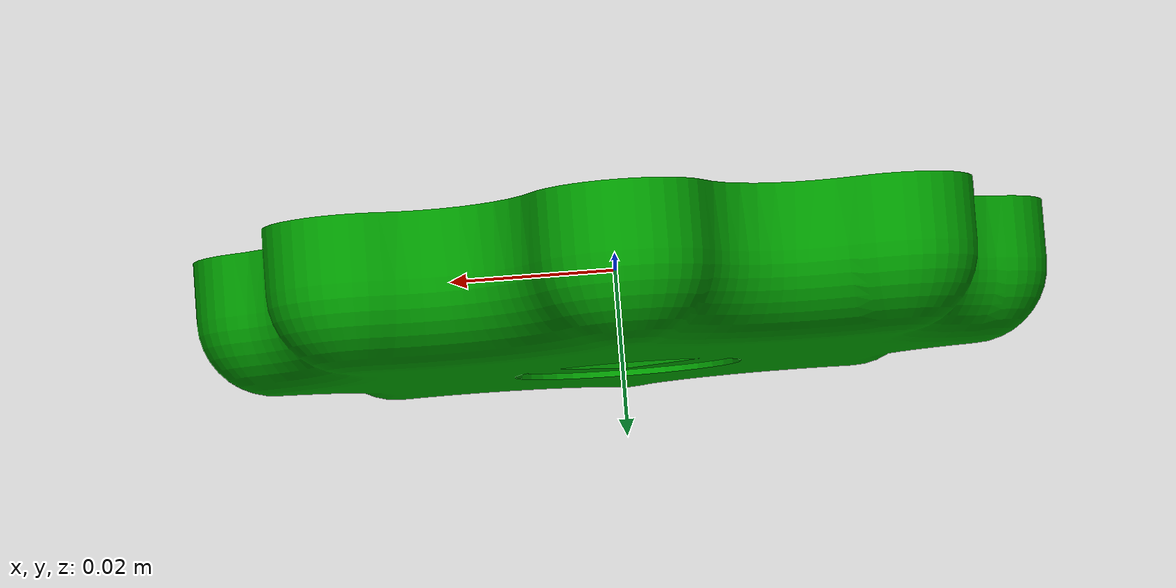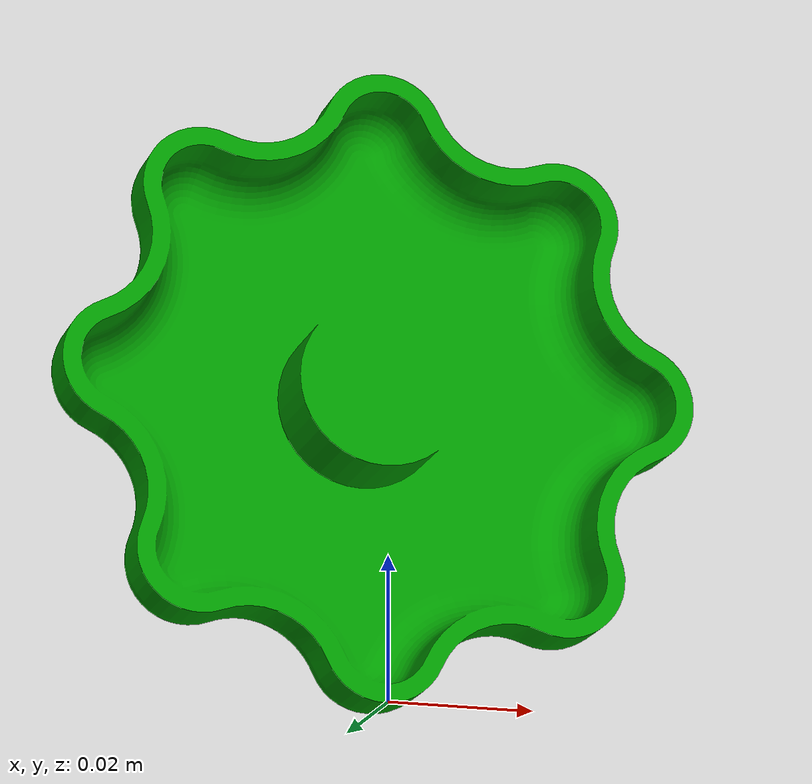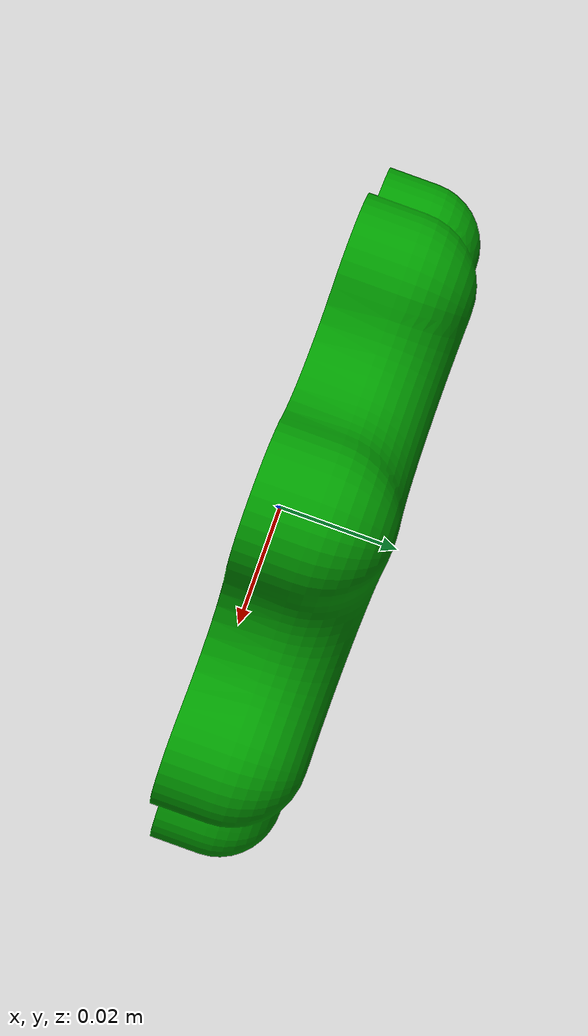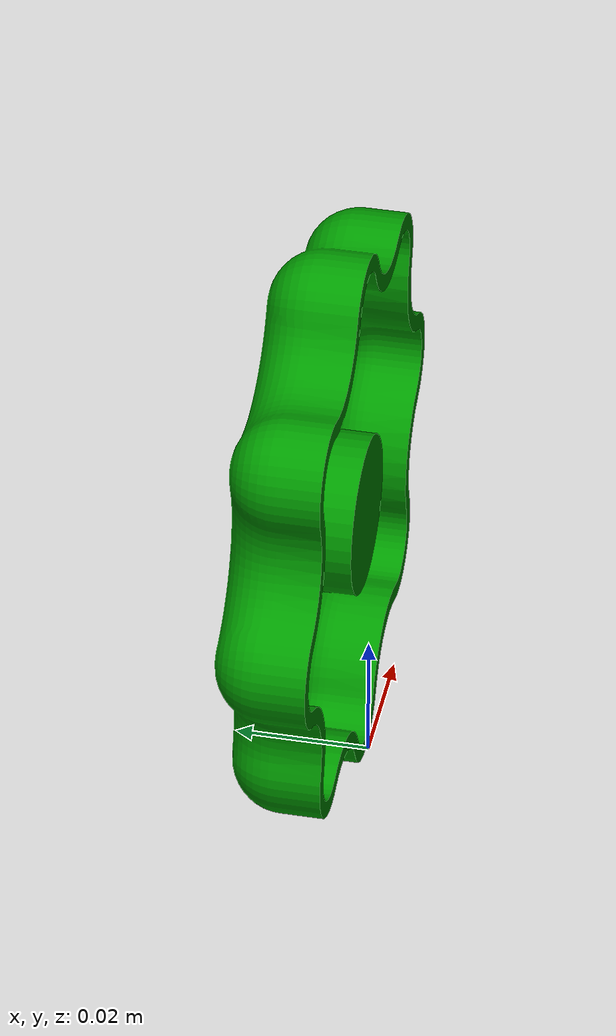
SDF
<?xml version="1.0" ?>
<sdf version="1.5">
  <model name="hand_wheel_valve">
    <link name="handle">
      <pose>0 0 0.04445 0 0 0</pose>
      <inertial>
        <mass>0.0644</mass>
        <inertia>
          <ixx>0.000031</ixx>
          <ixy>0.0000</ixy>
          <ixz>0.0000</ixz>
          <iyy>0.000031</iyy>
          <iyz>0.0000</iyz>
          <izz>0.000059</izz>
        </inertia>
      </inertial>
      <collision name="collision">
        <geometry>
          <mesh>
            <uri>model://drc_practice_hand_wheel_valve/meshes/hand_wheel_valve.dae</uri>
          </mesh>
        </geometry>
        <surface>
          <bounce>
            <restitution_coefficient>0.01</restitution_coefficient>
            <threshold>5.0</threshold>
          </bounce>
          <friction>
            <ode>
              <mu>5</mu>
              <mu2>5</mu2>
            </ode>
          </friction>
          <contact>
            <ode>
              <soft_cfm>0.01</soft_cfm>
              <kp>1000000.0</kp>
              <kd>100000.0</kd>
              <max_vel>0.01</max_vel>
              <min_depth>0.001</min_depth>
            </ode>
          </contact>
        </surface>
      </collision>
      <visual name="visual">
        <geometry>
          <mesh>
            <uri>model://drc_practice_hand_wheel_valve/meshes/hand_wheel_valve.dae</uri>
          </mesh>
        </geometry>
      </visual>
    </link>
    <joint name="joint" type="revolute">
      <parent>world</parent>
      <child>handle</child>
      <axis>
        <xyz>0 1 0</xyz>
        <limit>
          <lower>-12.56</lower>
          <upper>12.56</upper>
        </limit>
        <dynamics>
          <!--velocity dependent viscous damping coefficient of the joint-->
          <damping>10</damping>
          <!--default 0, static friction value of the joint-->
          <friction>10</friction>
        </dynamics>
        <use_parent_model_frame>true</use_parent_model_frame>
      </axis>
      <physics>
        <ode>
          <cfm_damping>1</cfm_damping>
        </ode>
      </physics>
    </joint>
  </model>
</sdf>
